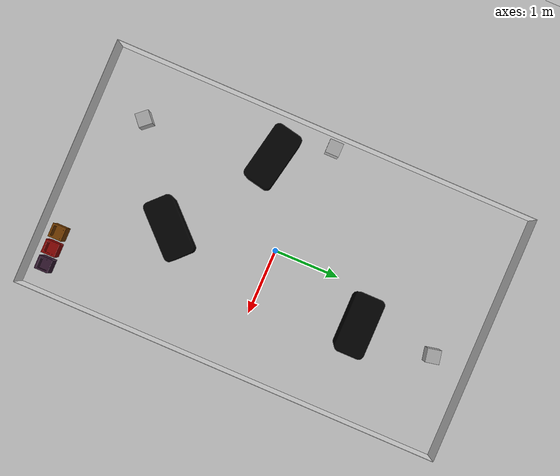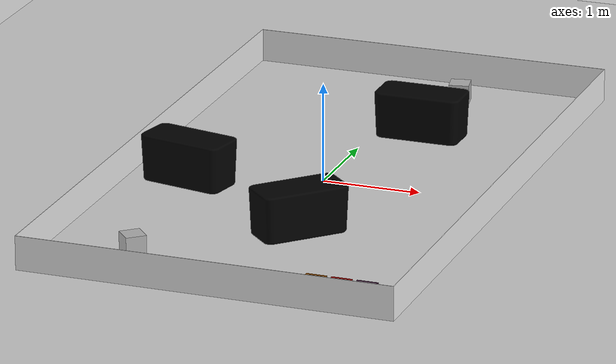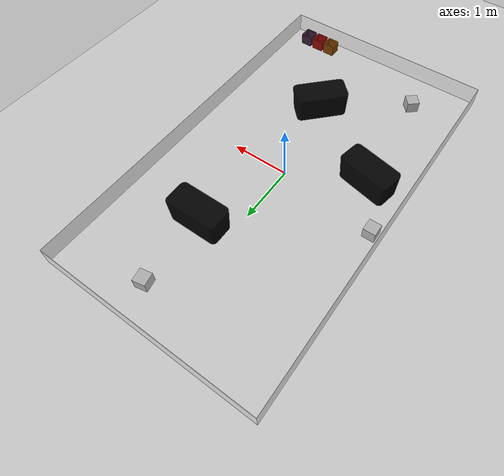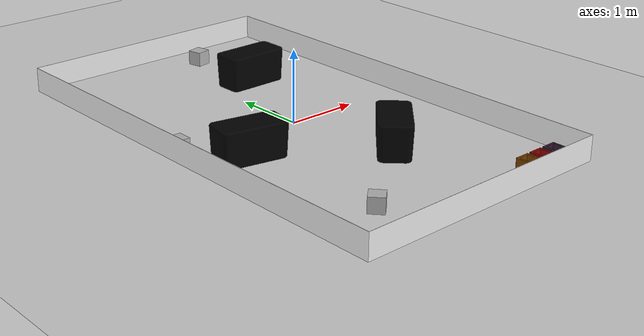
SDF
<?xml version="1.0"?>
<sdf version='1.8'>
  <world name='leo_arena'>
    <physics name='1ms' type='ignored'>
      <max_step_size>0.001</max_step_size>
      <real_time_factor>1</real_time_factor>
      <real_time_update_rate>1000</real_time_update_rate>
    </physics>

    <plugin
      filename="gz-sim-physics-system"
      name="gz::sim::systems::Physics">
    </plugin>

    <plugin
      filename="gz-sim-sensors-system"
      name="gz::sim::systems::Sensors">
      <render_engine>ogre2</render_engine>
    </plugin>

    <plugin
      filename="gz-sim-scene-broadcaster-system"
      name="gz::sim::systems::SceneBroadcaster">
    </plugin>
    <plugin
      filename="gz-sim-user-commands-system"
      name="gz::sim::systems::UserCommands">
    </plugin>
    <plugin filename="gz-sim-imu-system"
      name="gz::sim::systems::Imu">
    </plugin>

    <gravity>0 0 -9.8000000000000007</gravity>
    <magnetic_field>5.5644999999999998e-06 2.2875799999999999e-05 -4.2388400000000002e-05</magnetic_field>
    <atmosphere type='adiabatic'/>
    <scene>
      <ambient>0.400000006 0.400000006 0.400000006 1</ambient>
      <background>0.699999988 0.699999988 0.699999988 1</background>
      <shadows>true</shadows>
    </scene>
    <model name='ground_plane'>
      <static>true</static>
      <link name='link'>
        <collision name='collision'>
          <geometry>
            <plane>
              <normal>0 0 1</normal>
              <size>100 100</size>
            </plane>
          </geometry>
          <surface>
            <friction>
              <ode>
                <mu>50</mu>
              </ode>
              <bullet>
                <friction>1</friction>
                <friction2>1</friction2>
                <rolling_friction>0.10000000000000001</rolling_friction>
              </bullet>
            </friction>
            <bounce/>
            <contact/>
          </surface>
        </collision>
        <visual name='visual'>
          <geometry>
            <plane>
              <normal>0 0 1</normal>
              <size>100 100</size>
            </plane>
          </geometry>
          <material>
            <ambient>0.800000012 0.800000012 0.800000012 1</ambient>
            <diffuse>0.800000012 0.800000012 0.800000012 1</diffuse>
            <specular>0.800000012 0.800000012 0.800000012 1</specular>
          </material>
        </visual>
        <pose>0 0 0 0 0 0</pose>
        <inertial>
          <pose>0 0 0 0 0 0</pose>
          <mass>1</mass>
          <inertia>
            <ixx>1</ixx>
            <ixy>0</ixy>
            <ixz>0</ixz>
            <iyy>1</iyy>
            <iyz>0</iyz>
            <izz>1</izz>
          </inertia>
        </inertial>
        <enable_wind>false</enable_wind>
      </link>
      <pose>0 0 0 0 0 0</pose>
      <self_collide>false</self_collide>
    </model>

    <include>
      <uri>model://arena_bounds</uri>
      <name>arena_bound</name>
      <static>true</static>
      <pose>0 0 0.0005 0 0 0</pose>
    </include>

    <include>
      <uri>model://yellow_box</uri>
      <name>yellow_box</name>
      <pose>1 -3 0.1004 0 0 0</pose>
    </include>

    <include>
      <uri>model://red_box</uri>
      <name>red_box</name>
      <pose>1.25 -3 0.1004 0 0 0</pose>
    </include>

    <include>
      <uri>model://purple_box</uri>
      <name>purple_box</name>
      <pose>1.5 -3 0.1004 0 0 0</pose>
    </include>

    <include>
      <uri>model://box_obstacle</uri>
      <name>box_obstacle_1</name>
      <pose>0.3 -1.5 0.2677 0 0 0.8</pose>
    </include>

    <include>
      <uri>model://box_obstacle</uri>
      <name>box_obstacle_2</name>
      <pose>-1.2 -0.5538 0.2677 0 0 -0.2</pose>
    </include>

    <include>
      <uri>model://box_obstacle</uri>
      <name>box_obstacle_3</name>
      <pose>0.5 1.5 0.2677 0 0 0</pose>
    </include>

    <include>
      <uri>model://box_for_block</uri>
      <name>box_for_red_block</name>
      <pose>0.5 2.7 0.1034 0 0 0.2</pose>
    </include>

    <include>
      <uri>model://box_for_block</uri>
      <name>box_for_yellow_block</name>
      <pose>-1.7 0.2 0.1034 0 0 0</pose>
    </include>

    <include>
      <uri>model://box_for_block</uri>
      <name>box_for_purple_block</name>
      <pose>-1 -2.5 0.1034 0 0 0.72</pose>
    </include>

    <light name='sun' type='directional'>
      <pose>0 0 10 0 0 0</pose>
      <cast_shadows>true</cast_shadows>
      <intensity>1</intensity>
      <direction>-0.5 0.10000000000000001 -0.90000000000000002</direction>
      <diffuse>0.800000012 0.800000012 0.800000012 1</diffuse>
      <specular>0.200000003 0.200000003 0.200000003 1</specular>
      <attenuation>
        <range>1000</range>
        <linear>0.0099999997764825821</linear>
        <constant>0.89999997615814209</constant>
        <quadratic>0.0010000000474974513</quadratic>
      </attenuation>
      <spot>
        <inner_angle>0</inner_angle>
        <outer_angle>0</outer_angle>
        <falloff>0</falloff>
      </spot>
    </light>
  </world>
</sdf>

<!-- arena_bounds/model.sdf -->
<sdf version="1.6">
  <model name='arena_bounds'>
    <link name='link'>
      <visual name='visual'>
        <geometry>
          <mesh>
            <uri>model://arena_bounds/meshes/arena_bound.dae</uri>
          </mesh>
        </geometry>
      </visual>
      <collision name='collision'>
        <geometry>
          <mesh>
            <uri>model://arena_bounds/meshes/arena_bound.dae</uri>
          </mesh>
        </geometry>
      </collision>
      <pose>0 0 0 0 0 0</pose>
      <inertial>
        <pose>0 0 0 0 0 0</pose>
        <mass>1</mass>
        <inertia>
          <ixx>1</ixx>
          <ixy>0</ixy>
          <ixz>0</ixz>
          <iyy>1</iyy>
          <iyz>0</iyz>
          <izz>1</izz>
        </inertia>
      </inertial>
      <enable_wind>false</enable_wind>
    </link>
    <pose>1.9132978518837522e-09 -4.8826270230276406e-11 0.00049697369571514028 2.2274627872049547e-10 8.0487195225189497e-09 -1.2509690292828324e-11</pose>
    <static>false</static>
    <self_collide>false</self_collide>
  </model>
</sdf>

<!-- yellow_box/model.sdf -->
<sdf version="1.6">
  <model name='yellow_box'>
    <link name='link'>
      <visual name='visual'>
        <geometry>
          <mesh>
            <uri>model://yellow_box/meshes/yellow_box.dae</uri>
          </mesh>
        </geometry>
      </visual>
      <collision name='collision'>
        <geometry>
          <mesh>
            <uri>model://yellow_box/meshes/yellow_box.dae</uri>
          </mesh>
        </geometry>
      </collision>
      <pose>0 0 0 0 0 0</pose>
      <inertial>
        <pose>0 0 0 0 0 0</pose>
        <mass>1</mass>
        <inertia>
          <ixx>1</ixx>
          <ixy>0</ixy>
          <ixz>0</ixz>
          <iyy>1</iyy>
          <iyz>0</iyz>
          <izz>1</izz>
        </inertia>
      </inertial>
      <enable_wind>false</enable_wind>
    </link>
    <pose>1 -3 0.1004 0 0 0</pose>
    <static>false</static>
    <self_collide>false</self_collide>
  </model>
</sdf>

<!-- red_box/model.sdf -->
<sdf version="1.6">
  <model name='red_box'>
    <link name='link'>
      <visual name='visual'>
        <geometry>
          <mesh>
            <uri>model://red_box/meshes/red_box.dae</uri>
          </mesh>
        </geometry>
      </visual>
      <collision name='collision'>
        <geometry>
          <mesh>
            <uri>model://red_box/meshes/red_box.dae</uri>
          </mesh>
        </geometry>
      </collision>
      <pose>0 0 0 0 0 0</pose>
      <inertial>
        <pose>0 0 0 0 0 0</pose>
        <mass>1</mass>
        <inertia>
          <ixx>1</ixx>
          <ixy>0</ixy>
          <ixz>0</ixz>
          <iyy>1</iyy>
          <iyz>0</iyz>
          <izz>1</izz>
        </inertia>
      </inertial>
      <enable_wind>false</enable_wind>
    </link>
    <pose>1.25 -3 0.1004 0 0 0</pose>
    <static>false</static>
    <self_collide>false</self_collide>
  </model>
</sdf>

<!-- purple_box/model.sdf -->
<sdf version="1.6">
  <model name='purple_box'>
    <link name='link'>
      <visual name='visual'>
        <geometry>
          <mesh>
            <uri>model://purple_box/meshes/purple_box.dae</uri>
          </mesh>
        </geometry>
      </visual>
      <collision name='collision'>
        <geometry>
          <mesh>
            <uri>model://purple_box/meshes/purple_box.dae</uri>
          </mesh>
        </geometry>
      </collision>
      <pose>0 0 0 0 0 0</pose>
      <inertial>
        <pose>0 0 0 0 0 0</pose>
        <mass>1</mass>
        <inertia>
          <ixx>1</ixx>
          <ixy>0</ixy>
          <ixz>0</ixz>
          <iyy>1</iyy>
          <iyz>0</iyz>
          <izz>1</izz>
        </inertia>
      </inertial>
      <enable_wind>false</enable_wind>
    </link>
    <pose>1.5 -3 0.1004 0 0 0</pose>
    <static>false</static>
    <self_collide>false</self_collide>
  </model>
</sdf>

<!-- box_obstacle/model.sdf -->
<sdf version="1.6">
  <model name='box_obstacle'>
    <link name='link'>
      <visual name='visual'>
        <geometry>
          <mesh>
            <uri>model://box_obstacle/meshes/box_obstacle.dae</uri>
          </mesh>
        </geometry>
      </visual>
      <collision name='collision'>
        <geometry>
          <mesh>
            <uri>model://box_obstacle/meshes/box_obstacle.dae</uri>
          </mesh>
        </geometry>
      </collision>
      <pose>0 0 0 0 0 0</pose>
      <inertial>
        <pose>0 0 0 0 0 0</pose>
        <mass>1</mass>
        <inertia>
          <ixx>1</ixx>
          <ixy>0</ixy>
          <ixz>0</ixz>
          <iyy>1</iyy>
          <iyz>0</iyz>
          <izz>1</izz>
        </inertia>
      </inertial>
      <enable_wind>false</enable_wind>
    </link>
    <pose>0.29999999999999982 -1.5 0.26769999999999999 0 0 0.80000000000000049</pose>
    <static>false</static>
    <self_collide>false</self_collide>
  </model>
</sdf>

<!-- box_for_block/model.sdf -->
<sdf version="1.6">
  <model name='box'>
    <pose>0.41110848594480309 0.22091487055839254 0.5 0 0 0</pose>
    <link name='box_link'>
      <inertial>
        <inertia>
          <ixx>0.16666</ixx>
          <ixy>0</ixy>
          <ixz>0</ixz>
          <iyy>0.16666</iyy>
          <iyz>0</iyz>
          <izz>0.16666</izz>
        </inertia>
        <mass>1</mass>
        <pose>0 0 0 0 0 0</pose>
      </inertial>
      <collision name='box_collision'>
        <geometry>
          <box>
            <size>0.207 0.207 0.207</size>
          </box>
        </geometry>
        <surface>
          <friction>
            <ode/>
          </friction>
          <bounce/>
          <contact/>
        </surface>
      </collision>
      <visual name='box_visual'>
        <geometry>
          <box>
            <size>0.207 0.207 0.207</size>
          </box>
        </geometry>
        <material>
          <ambient>0.300000012 0.300000012 0.300000012 1</ambient>
          <diffuse>0.699999988 0.699999988 0.699999988 1</diffuse>
          <specular>1 1 1 1</specular>
        </material>
      </visual>
      <pose>0 0 0 0 0 0</pose>
      <enable_wind>false</enable_wind>
    </link>
    <static>false</static>
    <self_collide>false</self_collide>
  </model>
</sdf>
